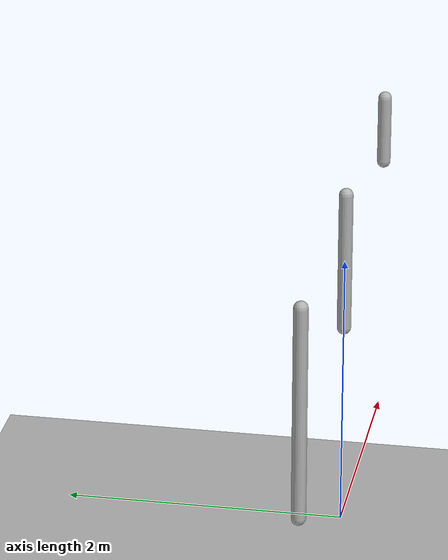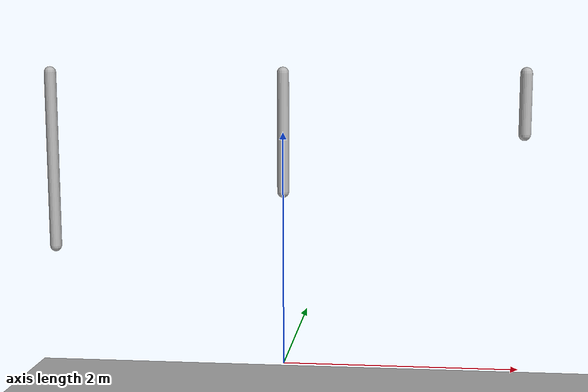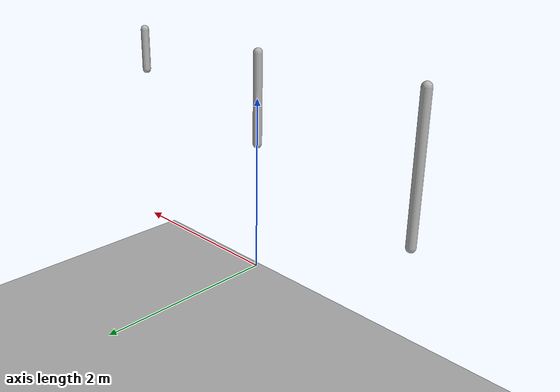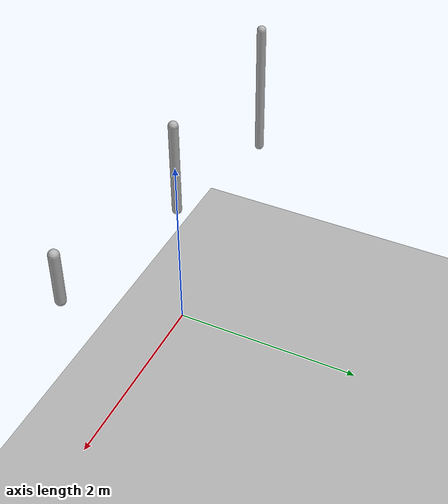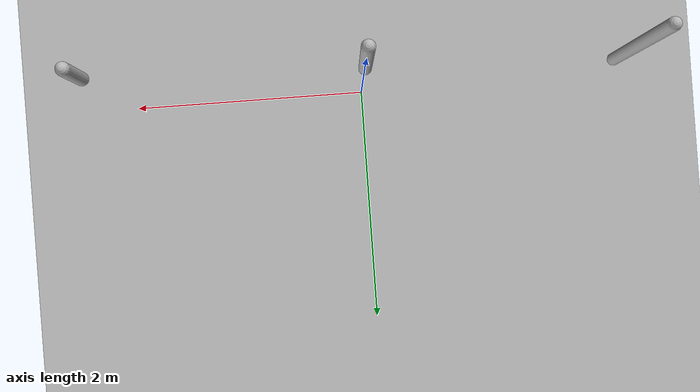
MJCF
<mujoco>
  <option gravity="0 0 -9.81" />
  <worldbody>
    <body name="object_5" pos="0 0 -1">
      <geom type="plane" size="20 20 0.1" rgba="0.7 0.7 0.7 1" />
    </body>
    <body name="object_4" pos="0 0 3" />
    <body name="object_1" pos="-2 0 2.5">
      <geom type="capsule" fromto="0 0 0 0 0 -1.5" size="0.05" rgba="0.7 0.7 0.7 1" />
      <joint type="hinge" axis="0 1 0" pos="0 0 0" name="object_1_joint" />
    </body>
    <body name="object_2" pos="0 0 2.5">
      <geom type="capsule" fromto="0 0 0 0 0 -1.0" size="0.05" rgba="0.7 0.7 0.7 1" />
      <joint type="hinge" axis="0 1 0" pos="0 0 0" name="object_2_joint" />
    </body>
    <body name="object_3" pos="2 0 2.5">
      <geom type="capsule" fromto="0 0 0 0 0 -0.5" size="0.05" rgba="0.7 0.7 0.7 1" />
      <joint type="hinge" axis="0 1 0" pos="0 0 0" name="object_3_joint" />
    </body>
  </worldbody>
</mujoco>
